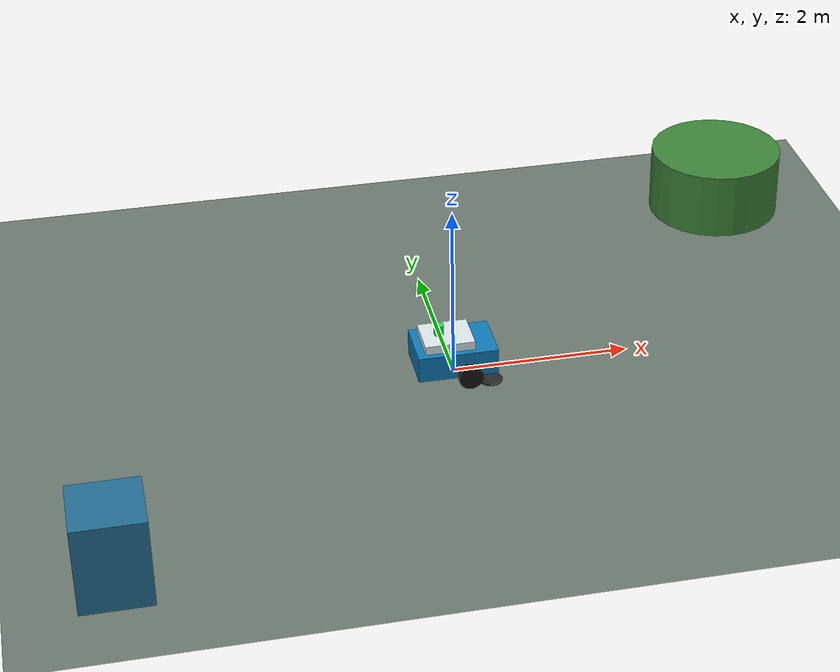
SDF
<?xml version="1.0"?>
<sdf version="1.8">
  <world name="smartclean_drive">
    <gravity>0 0 -9.8</gravity>

    <physics name="1ms" type="ignored">
      <max_step_size>0.001</max_step_size>
      <real_time_factor>1.0</real_time_factor>
    </physics>

    <scene>
      <ambient>0.35 0.35 0.35 1</ambient>
      <background>0.65 0.78 0.90 1</background>
      <shadows>true</shadows>
    </scene>

    <light name="sun" type="directional">
      <cast_shadows>true</cast_shadows>
      <pose>0 0 12 0 0 0</pose>
      <diffuse>0.9 0.9 0.85 1</diffuse>
      <specular>0.2 0.2 0.2 1</specular>
      <attenuation>
        <range>1000</range>
        <constant>0.9</constant>
        <linear>0.01</linear>
        <quadratic>0.001</quadratic>
      </attenuation>
      <direction>-0.45 0.25 -0.86</direction>
    </light>

    <model name="drive_surface">
      <static>true</static>
      <link name="ground_link">
        <collision name="ground_collision">
          <geometry>
            <plane>
              <normal>0 0 1</normal>
              <size>20 16</size>
            </plane>
          </geometry>
          <surface>
            <friction>
              <ode>
                <mu>1.0</mu>
                <mu2>1.0</mu2>
              </ode>
            </friction>
          </surface>
        </collision>
        <visual name="ground_visual">
          <geometry>
            <plane>
              <normal>0 0 1</normal>
              <size>20 16</size>
            </plane>
          </geometry>
          <material>
            <ambient>0.32 0.36 0.34 1</ambient>
            <diffuse>0.42 0.47 0.44 1</diffuse>
            <specular>0.04 0.04 0.04 1</specular>
          </material>
        </visual>
      </link>
    </model>

    <model name="north_planter">
      <static>true</static>
      <pose>4 3 0.40 0 0 0</pose>
      <link name="planter_link">
        <collision name="planter_collision">
          <geometry>
            <cylinder>
              <radius>0.8</radius>
              <length>0.8</length>
            </cylinder>
          </geometry>
        </collision>
        <visual name="planter_visual">
          <geometry>
            <cylinder>
              <radius>0.8</radius>
              <length>0.8</length>
            </cylinder>
          </geometry>
          <material>
            <ambient>0.18 0.38 0.18 1</ambient>
            <diffuse>0.24 0.52 0.22 1</diffuse>
          </material>
        </visual>
      </link>
    </model>

    <model name="waste_bin">
      <static>true</static>
      <pose>-4 -3 0.50 0 0 0</pose>
      <link name="bin_link">
        <collision name="bin_collision">
          <geometry>
            <box>
              <size>0.75 0.75 1.0</size>
            </box>
          </geometry>
        </collision>
        <visual name="bin_visual">
          <geometry>
            <box>
              <size>0.75 0.75 1.0</size>
            </box>
          </geometry>
          <material>
            <ambient>0.10 0.28 0.38 1</ambient>
            <diffuse>0.14 0.43 0.58 1</diffuse>
          </material>
        </visual>
      </link>
    </model>

    <!-- Resolved from this package's installed models directory; no Fuel lookup. -->
    <include>
      <uri>model://smartclean_robot</uri>
      <name>smartclean_robot</name>
      <pose>0 0 0 0 0 0</pose>
    </include>
  </world>
</sdf>

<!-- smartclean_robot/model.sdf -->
<sdf version="1.8">
  <model name="smartclean_robot">
    <static>false</static>
    <self_collide>false</self_collide>

    <!-- The base link represents the main cleaning-vehicle body. -->
    <link name="base_link">
      <pose>0 0 0.25 0 0 0</pose>
      <inertial>
        <mass>45.0</mass>
        <inertia>
          <ixx>1.779</ixx>
          <ixy>0.0</ixy>
          <ixz>0.0</ixz>
          <iyy>3.047</iyy>
          <iyz>0.0</iyz>
          <izz>4.151</izz>
        </inertia>
      </inertial>
      <collision name="body_collision">
        <geometry>
          <box>
            <size>0.90 0.62 0.30</size>
          </box>
        </geometry>
      </collision>
      <visual name="body_visual">
        <geometry>
          <box>
            <size>0.90 0.62 0.30</size>
          </box>
        </geometry>
        <material>
          <ambient>0.04 0.32 0.52 1</ambient>
          <diffuse>0.05 0.48 0.72 1</diffuse>
          <specular>0.10 0.10 0.10 1</specular>
        </material>
      </visual>
      <visual name="top_cover_visual">
        <pose>-0.08 0 0.20 0 0 0</pose>
        <geometry>
          <box>
            <size>0.56 0.48 0.10</size>
          </box>
        </geometry>
        <material>
          <ambient>0.72 0.78 0.80 1</ambient>
          <diffuse>0.86 0.91 0.92 1</diffuse>
        </material>
      </visual>
      <visual name="status_beacon_visual">
        <pose>-0.16 0 0.31 0 0 0</pose>
        <geometry>
          <cylinder>
            <radius>0.055</radius>
            <length>0.12</length>
          </cylinder>
        </geometry>
        <material>
          <ambient>0.08 0.62 0.25 1</ambient>
          <diffuse>0.10 0.90 0.35 1</diffuse>
          <emissive>0.02 0.22 0.08 1</emissive>
        </material>
      </visual>
      <visual name="left_brush_visual">
        <pose>0.35 0.35 -0.19 0 0 0</pose>
        <geometry>
          <cylinder>
            <radius>0.13</radius>
            <length>0.02</length>
          </cylinder>
        </geometry>
        <material>
          <ambient>0.08 0.08 0.08 1</ambient>
          <diffuse>0.16 0.16 0.16 1</diffuse>
        </material>
      </visual>
      <visual name="right_brush_visual">
        <pose>0.35 -0.35 -0.19 0 0 0</pose>
        <geometry>
          <cylinder>
            <radius>0.13</radius>
            <length>0.02</length>
          </cylinder>
        </geometry>
        <material>
          <ambient>0.08 0.08 0.08 1</ambient>
          <diffuse>0.16 0.16 0.16 1</diffuse>
        </material>
      </visual>
    </link>

    <link name="left_wheel_link">
      <pose>0.12 0.37 0.14 0 0 0</pose>
      <inertial>
        <mass>2.5</mass>
        <inertia>
          <ixx>0.01358</ixx>
          <ixy>0.0</ixy>
          <ixz>0.0</ixz>
          <iyy>0.02450</iyy>
          <iyz>0.0</iyz>
          <izz>0.01358</izz>
        </inertia>
      </inertial>
      <collision name="left_wheel_collision">
        <pose>0 0 0 1.57079632679 0 0</pose>
        <geometry>
          <cylinder>
            <radius>0.14</radius>
            <length>0.08</length>
          </cylinder>
        </geometry>
        <surface>
          <friction>
            <ode>
              <mu>1.2</mu>
              <mu2>0.7</mu2>
            </ode>
          </friction>
        </surface>
      </collision>
      <visual name="left_wheel_visual">
        <pose>0 0 0 1.57079632679 0 0</pose>
        <geometry>
          <cylinder>
            <radius>0.14</radius>
            <length>0.08</length>
          </cylinder>
        </geometry>
        <material>
          <ambient>0.035 0.035 0.035 1</ambient>
          <diffuse>0.08 0.08 0.08 1</diffuse>
        </material>
      </visual>
    </link>

    <link name="right_wheel_link">
      <pose>0.12 -0.37 0.14 0 0 0</pose>
      <inertial>
        <mass>2.5</mass>
        <inertia>
          <ixx>0.01358</ixx>
          <ixy>0.0</ixy>
          <ixz>0.0</ixz>
          <iyy>0.02450</iyy>
          <iyz>0.0</iyz>
          <izz>0.01358</izz>
        </inertia>
      </inertial>
      <collision name="right_wheel_collision">
        <pose>0 0 0 1.57079632679 0 0</pose>
        <geometry>
          <cylinder>
            <radius>0.14</radius>
            <length>0.08</length>
          </cylinder>
        </geometry>
        <surface>
          <friction>
            <ode>
              <mu>1.2</mu>
              <mu2>0.7</mu2>
            </ode>
          </friction>
        </surface>
      </collision>
      <visual name="right_wheel_visual">
        <pose>0 0 0 1.57079632679 0 0</pose>
        <geometry>
          <cylinder>
            <radius>0.14</radius>
            <length>0.08</length>
          </cylinder>
        </geometry>
        <material>
          <ambient>0.035 0.035 0.035 1</ambient>
          <diffuse>0.08 0.08 0.08 1</diffuse>
        </material>
      </visual>
    </link>

    <link name="caster_link">
      <pose>-0.34 0 0.075 0 0 0</pose>
      <inertial>
        <mass>0.7</mass>
        <inertia>
          <ixx>0.001575</ixx>
          <ixy>0.0</ixy>
          <ixz>0.0</ixz>
          <iyy>0.001575</iyy>
          <iyz>0.0</iyz>
          <izz>0.001575</izz>
        </inertia>
      </inertial>
      <collision name="caster_collision">
        <geometry>
          <sphere>
            <radius>0.075</radius>
          </sphere>
        </geometry>
        <surface>
          <friction>
            <ode>
              <mu>0.3</mu>
              <mu2>0.3</mu2>
            </ode>
          </friction>
        </surface>
      </collision>
      <visual name="caster_visual">
        <geometry>
          <sphere>
            <radius>0.075</radius>
          </sphere>
        </geometry>
        <material>
          <ambient>0.08 0.08 0.08 1</ambient>
          <diffuse>0.14 0.14 0.14 1</diffuse>
        </material>
      </visual>
    </link>

    <joint name="left_wheel_joint" type="revolute">
      <parent>base_link</parent>
      <child>left_wheel_link</child>
      <axis>
        <xyz expressed_in="__model__">0 1 0</xyz>
        <limit>
          <lower>-1.0e16</lower>
          <upper>1.0e16</upper>
          <effort>80.0</effort>
          <velocity>12.0</velocity>
        </limit>
        <dynamics>
          <damping>0.05</damping>
          <friction>0.02</friction>
        </dynamics>
      </axis>
    </joint>

    <joint name="right_wheel_joint" type="revolute">
      <parent>base_link</parent>
      <child>right_wheel_link</child>
      <axis>
        <xyz expressed_in="__model__">0 1 0</xyz>
        <limit>
          <lower>-1.0e16</lower>
          <upper>1.0e16</upper>
          <effort>80.0</effort>
          <velocity>12.0</velocity>
        </limit>
        <dynamics>
          <damping>0.05</damping>
          <friction>0.02</friction>
        </dynamics>
      </axis>
    </joint>

    <joint name="caster_joint" type="ball">
      <parent>base_link</parent>
      <child>caster_link</child>
    </joint>

    <plugin
      filename="ignition-gazebo-diff-drive-system"
      name="gz::sim::systems::DiffDrive">
      <left_joint>left_wheel_joint</left_joint>
      <right_joint>right_wheel_joint</right_joint>
      <wheel_separation>0.74</wheel_separation>
      <wheel_radius>0.14</wheel_radius>
      <topic>/smartclean/safe_cmd_vel</topic>
      <odom_topic>/smartclean/odom</odom_topic>
      <tf_topic>/smartclean/tf</tf_topic>
      <frame_id>odom</frame_id>
      <child_frame_id>base_link</child_frame_id>
      <odom_publish_frequency>30</odom_publish_frequency>
      <max_linear_velocity>1.2</max_linear_velocity>
      <min_linear_velocity>-0.5</min_linear_velocity>
      <max_angular_velocity>1.5</max_angular_velocity>
      <min_angular_velocity>-1.5</min_angular_velocity>
      <max_linear_acceleration>0.8</max_linear_acceleration>
      <min_linear_acceleration>-1.0</min_linear_acceleration>
      <max_angular_acceleration>2.0</max_angular_acceleration>
      <min_angular_acceleration>-2.0</min_angular_acceleration>
    </plugin>
  </model>
</sdf>
